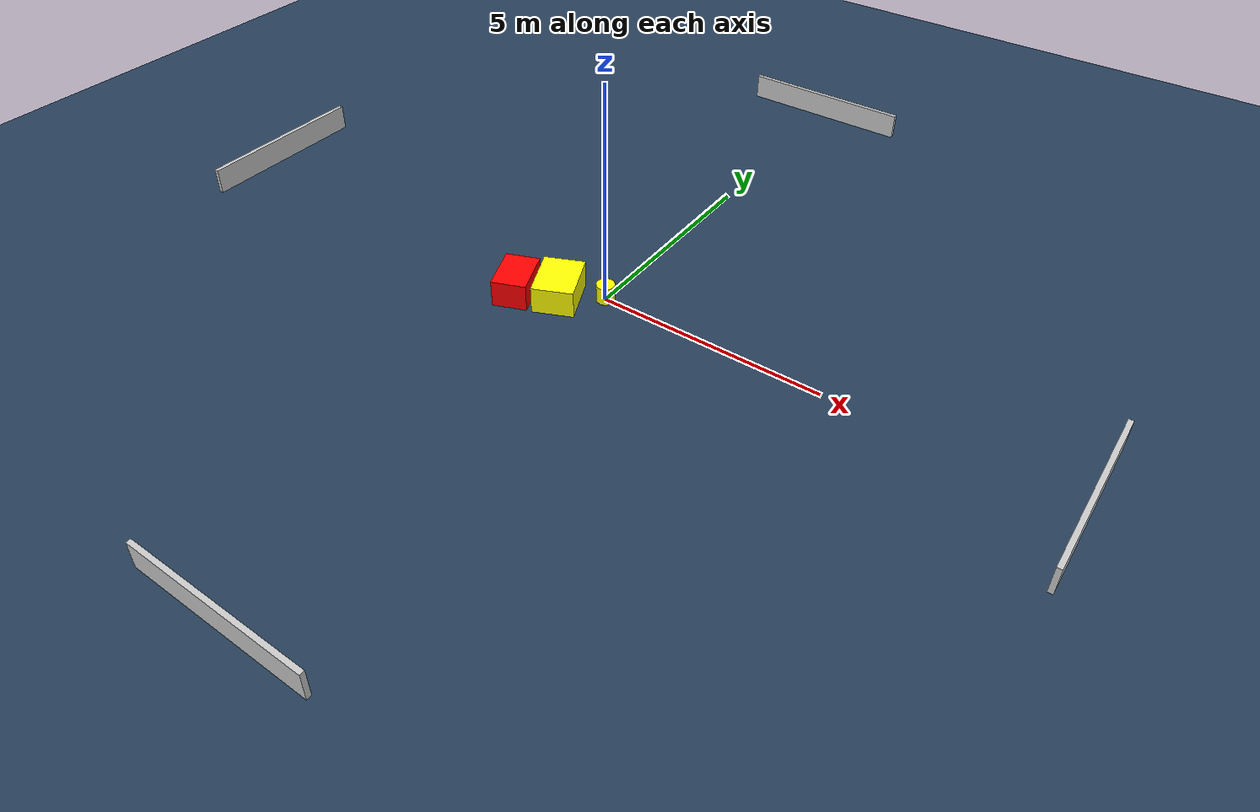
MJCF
<?xml version="1.0" ?>
<mujoco model="generated_environment">
  <option timestep="0.01" integrator="RK4" cone="elliptic"/>
  <default>
    <geom density="1"/>
  </default>
  <asset>
    <texture builtin="gradient" height="3072" name="skybox" rgb1="0.3 0.5 0.7" rgb2="0 0 0" type="skybox" width="512"/>
    <texture builtin="checker" height="300" name="groundplane" rgb1="0.2 0.3 0.4" rgb2="0.1 0.2 0.3" type="2d" width="300"/>
    <material name="groundplane" reflectance="0.2" texrepeat="5 5" texture="groundplane"/>
  </asset>
  <worldbody>
    <light dir="0 0 -1" directional="true" pos="0 0 1.5"/>
    <geom condim="3" friction="0.5 0.005 0.001" material="groundplane" name="floor" pos="0 0 0" size="0 0 0.05" type="plane"/>
    <body name="walls">
      <geom name="wall_1" condim="4" pos="-10.0 0.0 0.3" rgba="0.800000011920929 0.800000011920929 0.800000011920929 1.0" size="0.05 2.0 0.3" type="box"/>
      <geom name="wall_2" condim="4" pos="10.0 0.0 0.3" rgba="0.800000011920929 0.800000011920929 0.800000011920929 1.0" size="0.05 2.0 0.3" type="box"/>
      <geom name="wall_3" condim="4" pos="0.0 -10.0 0.3" rgba="0.800000011920929 0.800000011920929 0.800000011920929 1.0" size="2.0 0.05 0.3" type="box"/>
      <geom name="wall_4" condim="4" pos="0.0 10.0 0.3" rgba="0.800000011920929 0.800000011920929 0.800000011920929 1.0" size="2.0 0.05 0.3" type="box"/>
    </body>
    <body name="robot">
      <joint name="joint_x" type="slide" pos="0 0 0" axis="1 0 0"/>
      <joint name="joint_y" type="slide" pos="0 0 0" axis="0 1 0"/>
      <geom name="robot" type="cylinder" pos="0.0 0.0 0.2" size="0.2 0.2 0.0" mass="5.0" friction="1.0 0.005 0.0001" condim="4" rgba="1.0 1.0 0.0 1.0"/>
    </body>
    <body name="obstacle_1_movable">
      <geom name="obstacle_1_movable" condim="4" pos="-0.8277973275229895 -0.5281260712175987 0.3" euler="0 0 113.92085308540867" friction="0.0 0.005 0.001" rgba="1.0 1.0 0.0 1.0" size="0.5773459341749072 0.4498004739019546 0.3" type="box" mass="0.1"/>
      <joint type="free"/>
    </body>
    <body name="obstacle_2_static">
      <geom name="obstacle_2_static" condim="4" pos="-1.6571552864366832 -0.9170246150738621 0.3" euler="0 0 291.6325985684166" friction="0.0 0.005 0.001" rgba="1.0 0.0 0.0 1.0" size="0.5214626955537427 0.3763782110215386 0.3" type="box"/>
    </body>
  </worldbody>
  <actuator>
    <motor name="actuator_x" joint="joint_x" gear="1" ctrlrange="-1 1"/>
    <motor name="actuator_y" joint="joint_y" gear="1" ctrlrange="-1 1"/>
  </actuator>
</mujoco>
